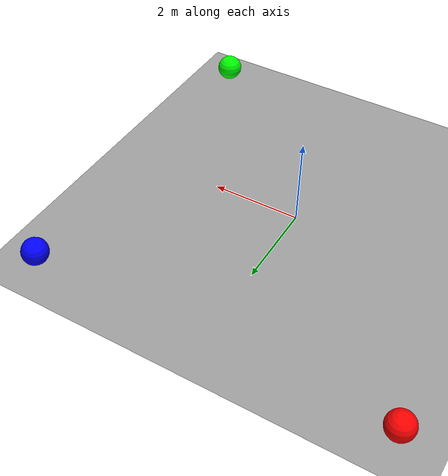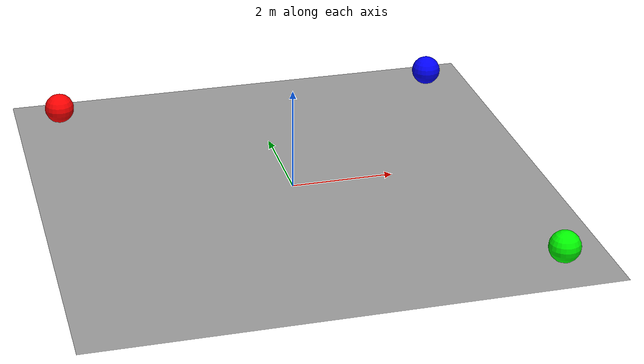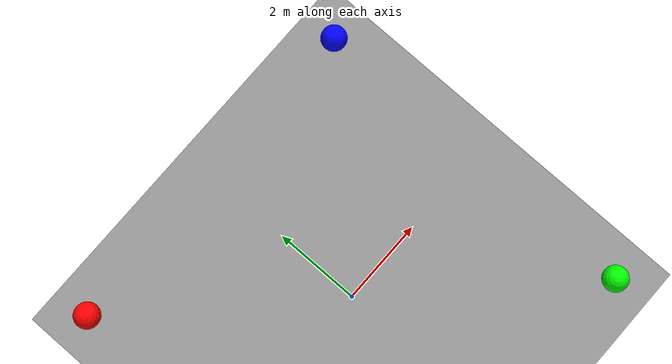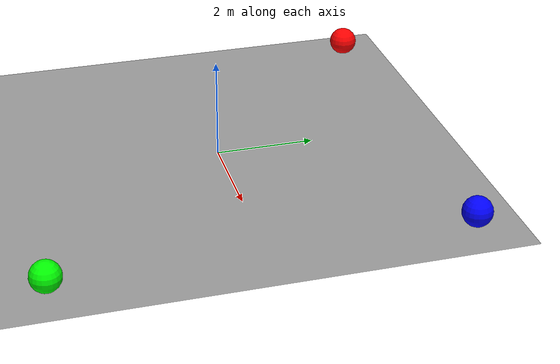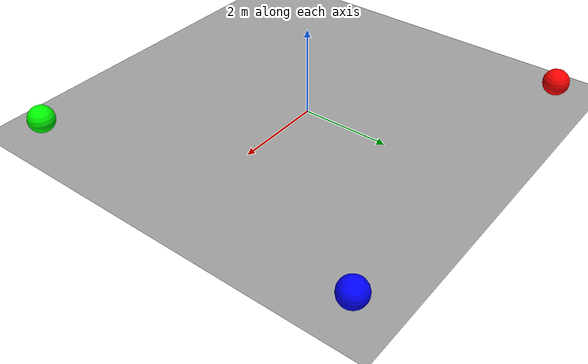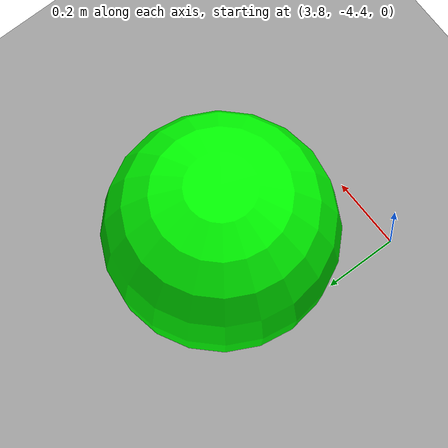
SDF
<sdf version="1.4">
 <world name="default">
  <light name="sun" type="directional">
   <pose>0 0 10 0 -0 0</pose>
   <diffuse>0.8 0.8 0.8 1</diffuse>
   <specular>0.2 0.2 0.2 1</specular>
   <attenuation>
    <range>1000</range>
    <constant>0.9</constant>
    <linear>0.01</linear>
    <quadratic>0.001</quadratic>
   </attenuation>
   <direction>0.5 0.1 -0.9</direction>
  </light>
  <scene><ambient>0.4 0.4 0.4 1</ambient><background>0.7 0.7 0.7 1</background><shadows>1</shadows></scene>
  <physics type="ode">
   <max_step_size>0.01</max_step_size>
   <real_time_factor>1</real_time_factor>
   <real_time_update_rate>100</real_time_update_rate>
   <gravity>0 0 -9.8</gravity>
  </physics>
  <model name="ground_plane_0">
   <static>1</static>
   <link name="link">
    <collision name="collision">
     <geometry><plane><normal>0 0 1</normal><size>100 100</size></plane></geometry>
     <surface><friction><ode><mu>100</mu><mu2>50</mu2></ode></friction></surface>
    </collision>
    <visual name="visual">
     <cast_shadows>0</cast_shadows>
     <geometry><plane><normal>0 0 1</normal><size>100 100</size></plane></geometry>
     <material>
      <script><uri>file://media/materials/scripts/gazebo.material</uri><name>Gazebo/Grey</name></script>
     </material>
    </visual>
    <velocity_decay><linear>0</linear><angular>0</angular></velocity_decay>
   </link>
   <pose>0.497681 0 0 0 -0 0</pose>
  </model>
  <model name="red_sphere">
   <pose>-4 4 0.3 0 0 0</pose>
   <static>true</static>
   <link name="linkr">
    <collision name="collision"><geometry><sphere><radius>0.3</radius></sphere></geometry></collision>
    <visual name="visual">
     <geometry><sphere><radius>0.3</radius></sphere></geometry>
     <material><ambient>1 0 0 1</ambient><diffuse>1 0 0 1</diffuse></material>
    </visual>
   </link>
  </model>
  <model name="blue_sphere">
   <pose>4 4 0.3 0 0 0</pose>
   <static>true</static>
   <link name="linkb">
    <collision name="collision"><geometry><sphere><radius>0.3</radius></sphere></geometry></collision>
    <visual name="visual">
     <geometry><sphere><radius>0.3</radius></sphere></geometry>
     <material><ambient>0 0 1 1</ambient><diffuse>0 0 1 1</diffuse></material>
    </visual>
   </link>
  </model>
  <model name="green_sphere">
   <pose>4 -4 0.3 0 0 0</pose>
   <static>true</static>
   <link name="linkg">
    <collision name="collision"><geometry><sphere><radius>0.3</radius></sphere></geometry></collision>
    <visual name="visual">
     <geometry><sphere><radius>0.3</radius></sphere></geometry>
     <material><ambient>0 1 0 1</ambient><diffuse>0 1 0 1</diffuse></material>
    </visual>
   </link>
  </model>
 </world>
</sdf>
